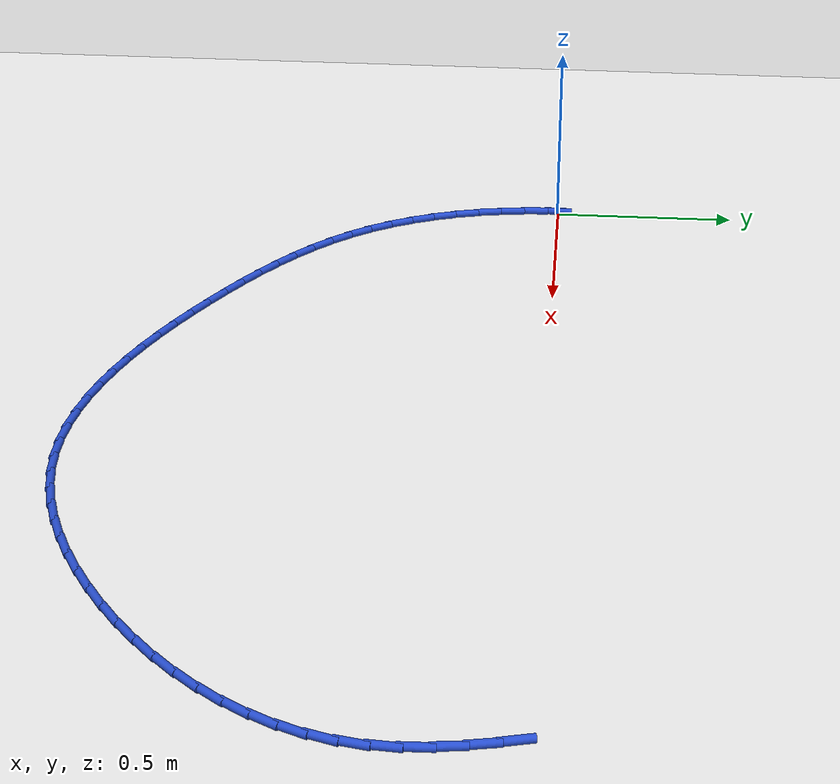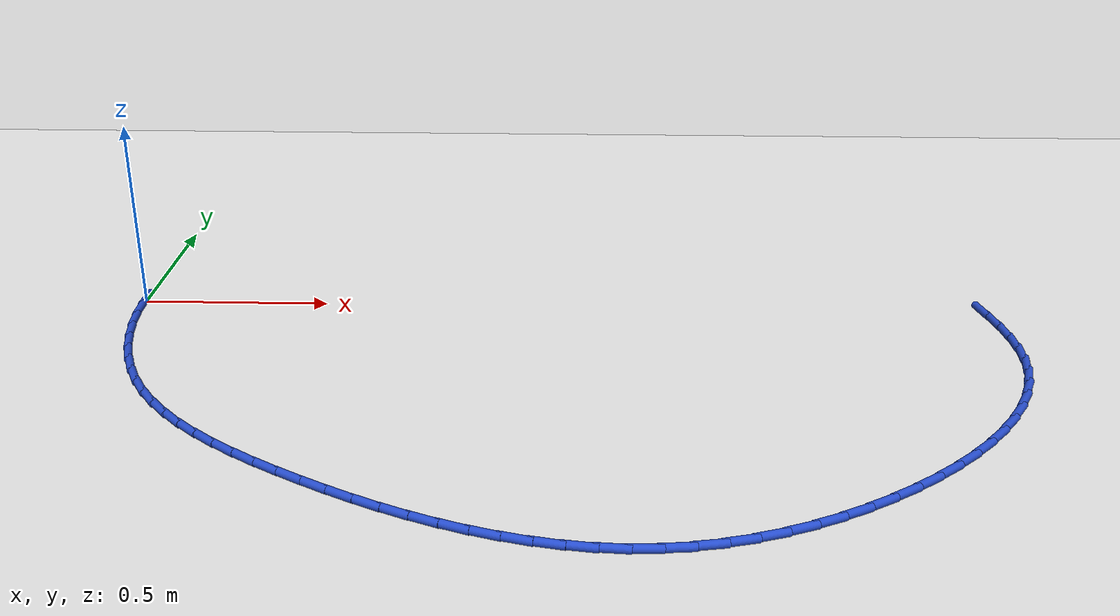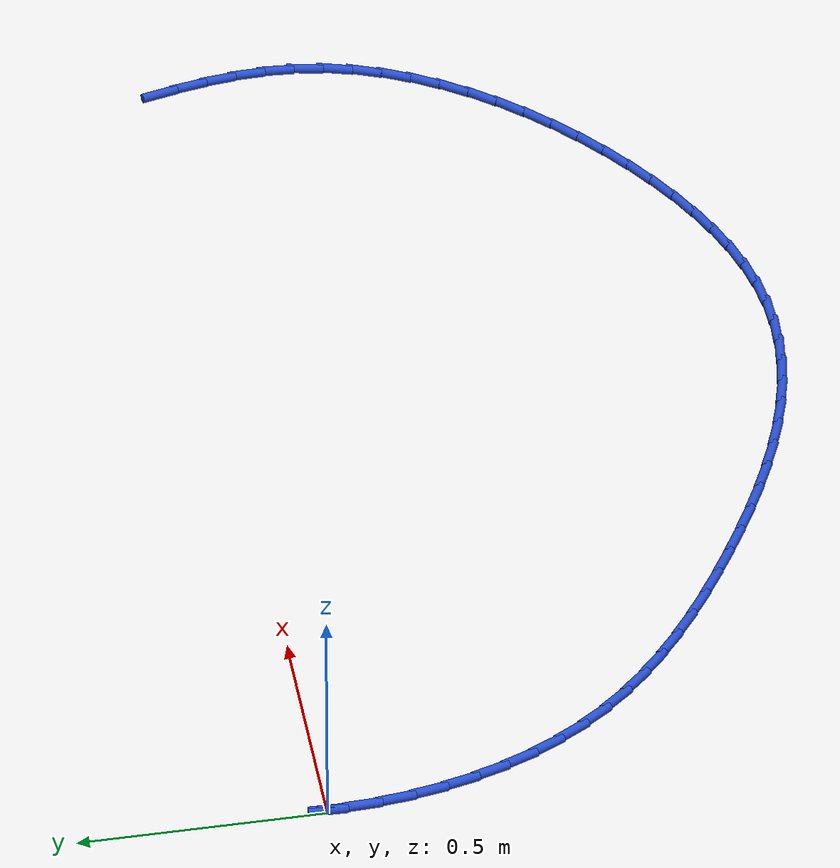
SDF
<sdf version="1.6">
 <world name="default">
  <model name="ground_plane">
   <static>1</static>
   <link name="link">
    <collision name="collision">
     <geometry><plane><normal>0 0 1</normal><size>100 100</size></plane></geometry>
     <surface><friction><ode><mu>100</mu><mu2>50</mu2></ode></friction></surface>
    </collision>
    <visual name="visual">
     <cast_shadows>0</cast_shadows>
     <geometry><plane><normal>0 0 1</normal><size>100 100</size></plane></geometry>
     <material>
      <script><uri>file://media/materials/scripts/gazebo.material</uri><name>Gazebo/WhiteGlow</name></script>
     </material>
    </visual>
   </link>
  </model>
  <model name="line">
   <link name="link_0">
    <pose>6.938893903907228e-17 6.938893903907228e-17 0.01 0 1.57 1.5469250835728008</pose>
    <collision name="collision">
     <geometry><cylinder><radius>0.01</radius><length>0.08</length></cylinder></geometry>
    </collision>
    <visual name="visual">
     <material>
      <script><name>Gazebo/Blue</name><uri>file://media/materials/scripts/gazebo.material</uri></script>
     </material>
     <geometry><cylinder><radius>0.01</radius><length>0.08</length></cylinder></geometry>
    </visual>
   </link>
   <link name="link_56">
    <pose>2.28206139808096 -0.015136964080858 0.01 0 1.57 -1.3373496389094075</pose>
    <collision name="collision">
     <geometry><cylinder><radius>0.01</radius><length>0.08</length></cylinder></geometry>
    </collision>
    <visual name="visual">
     <material>
      <script><name>Gazebo/Blue</name><uri>file://media/materials/scripts/gazebo.material</uri></script>
     </material>
     <geometry><cylinder><radius>0.01</radius><length>0.08</length></cylinder></geometry>
    </visual>
   </link>
   <link name="link_57">
    <pose>2.297586856186067 -0.08042979855683184 0.01 0 1.57 -1.3892265195322144</pose>
    <collision name="collision">
     <geometry><cylinder><radius>0.01</radius><length>0.08</length></cylinder></geometry>
    </collision>
    <visual name="visual">
     <material>
      <script><name>Gazebo/Blue</name><uri>file://media/materials/scripts/gazebo.material</uri></script>
     </material>
     <geometry><cylinder><radius>0.01</radius><length>0.08</length></cylinder></geometry>
    </visual>
   </link>
   <link name="link_58">
    <pose>2.309505282894215 -0.145347882486848 0.01 0 1.57 -1.4564763526986253</pose>
    <collision name="collision">
     <geometry><cylinder><radius>0.01</radius><length>0.08</length></cylinder></geometry>
    </collision>
    <visual name="visual">
     <material>
      <script><name>Gazebo/Blue</name><uri>file://media/materials/scripts/gazebo.material</uri></script>
     </material>
     <geometry><cylinder><radius>0.01</radius><length>0.08</length></cylinder></geometry>
    </visual>
   </link>
   <link name="link_59">
    <pose>2.316906821380067 -0.20980964175457467 0.01 0 1.57 -1.539913248803407</pose>
    <collision name="collision">
     <geometry><cylinder><radius>0.01</radius><length>0.08</length></cylinder></geometry>
    </collision>
    <visual name="visual">
     <material>
      <script><name>Gazebo/Blue</name><uri>file://media/materials/scripts/gazebo.material</uri></script>
     </material>
     <geometry><cylinder><radius>0.01</radius><length>0.08</length></cylinder></geometry>
    </visual>
   </link>
   <link name="link_60">
    <pose>2.318881614818289 -0.2737335022436773 0.01 0 1.57 1.5020029046519452</pose>
    <collision name="collision">
     <geometry><cylinder><radius>0.01</radius><length>0.08</length></cylinder></geometry>
    </collision>
    <visual name="visual">
     <material>
      <script><name>Gazebo/Blue</name><uri>file://media/materials/scripts/gazebo.material</uri></script>
     </material>
     <geometry><cylinder><radius>0.01</radius><length>0.08</length></cylinder></geometry>
    </visual>
   </link>
   <link name="link_61">
    <pose>2.3145198063835433 -0.3370378898378241 0.01 0 1.57 1.3908723173161703</pose>
    <collision name="collision">
     <geometry><cylinder><radius>0.01</radius><length>0.08</length></cylinder></geometry>
    </collision>
    <visual name="visual">
     <material>
      <script><name>Gazebo/Blue</name><uri>file://media/materials/scripts/gazebo.material</uri></script>
     </material>
     <geometry><cylinder><radius>0.01</radius><length>0.08</length></cylinder></geometry>
    </visual>
   </link>
   <link name="link_62">
    <pose>2.3031366552292356 -0.399620148959054 0.01 0 1.57 1.284663015837504</pose>
    <collision name="collision">
     <geometry><cylinder><radius>0.01</radius><length>0.08</length></cylinder></geometry>
    </collision>
    <visual name="visual">
     <material>
      <script><name>Gazebo/Blue</name><uri>file://media/materials/scripts/gazebo.material</uri></script>
     </material>
     <geometry><cylinder><radius>0.01</radius><length>0.08</length></cylinder></geometry>
    </visual>
   </link>
   <link name="link_63">
    <pose>2.284993257758473 -0.4612890491010736 0.01 0 1.57 1.1877613418608333</pose>
    <collision name="collision">
     <geometry><cylinder><radius>0.01</radius><length>0.08</length></cylinder></geometry>
    </collision>
    <visual name="visual">
     <material>
      <script><name>Gazebo/Blue</name><uri>file://media/materials/scripts/gazebo.material</uri></script>
     </material>
     <geometry><cylinder><radius>0.01</radius><length>0.08</length></cylinder></geometry>
    </visual>
   </link>
   <link name="link_64">
    <pose>2.2605990788104062 -0.5218301007704509 0.01 0 1.57 1.099929733300832</pose>
    <collision name="collision">
     <geometry><cylinder><radius>0.01</radius><length>0.08</length></cylinder></geometry>
    </collision>
    <visual name="visual">
     <material>
      <script><name>Gazebo/Blue</name><uri>file://media/materials/scripts/gazebo.material</uri></script>
     </material>
     <geometry><cylinder><radius>0.01</radius><length>0.08</length></cylinder></geometry>
    </visual>
   </link>
   <link name="link_65">
    <pose>2.230463584264604 -0.5810288143763234 0.01 0 1.57 1.0204584356422075</pose>
    <collision name="collision">
     <geometry><cylinder><radius>0.01</radius><length>0.08</length></cylinder></geometry>
    </collision>
    <visual name="visual">
     <material>
      <script><name>Gazebo/Blue</name><uri>file://media/materials/scripts/gazebo.material</uri></script>
     </material>
     <geometry><cylinder><radius>0.01</radius><length>0.08</length></cylinder></geometry>
    </visual>
   </link>
   <link name="link_66">
    <pose>2.195096240000639 -0.638670700327829 0.01 0 1.57 0.9483910346796052</pose>
    <collision name="collision">
     <geometry><cylinder><radius>0.01</radius><length>0.08</length></cylinder></geometry>
    </collision>
    <visual name="visual">
     <material>
      <script><name>Gazebo/Blue</name><uri>file://media/materials/scripts/gazebo.material</uri></script>
     </material>
     <geometry><cylinder><radius>0.01</radius><length>0.08</length></cylinder></geometry>
    </visual>
   </link>
   <link name="link_67">
    <pose>2.155006511898081 -0.6945412690341032 0.01 0 1.57 0.8826801795806837</pose>
    <collision name="collision">
     <geometry><cylinder><radius>0.01</radius><length>0.08</length></cylinder></geometry>
    </collision>
    <visual name="visual">
     <material>
      <script><name>Gazebo/Blue</name><uri>file://media/materials/scripts/gazebo.material</uri></script>
     </material>
     <geometry><cylinder><radius>0.01</radius><length>0.08</length></cylinder></geometry>
    </visual>
   </link>
   <link name="link_68">
    <pose>2.1107038658365007 -0.7484260309042842 0.01 0 1.57 0.8222792805905352</pose>
    <collision name="collision">
     <geometry><cylinder><radius>0.01</radius><length>0.08</length></cylinder></geometry>
    </collision>
    <visual name="visual">
     <material>
      <script><name>Gazebo/Blue</name><uri>file://media/materials/scripts/gazebo.material</uri></script>
     </material>
     <geometry><cylinder><radius>0.01</radius><length>0.08</length></cylinder></geometry>
    </visual>
   </link>
   <link name="link_69">
    <pose>2.06269776769547 -0.800110496347508 0.01 0 1.57 0.7661867375241921</pose>
    <collision name="collision">
     <geometry><cylinder><radius>0.01</radius><length>0.08</length></cylinder></geometry>
    </collision>
    <visual name="visual">
     <material>
      <script><name>Gazebo/Blue</name><uri>file://media/materials/scripts/gazebo.material</uri></script>
     </material>
     <geometry><cylinder><radius>0.01</radius><length>0.08</length></cylinder></geometry>
    </visual>
   </link>
   <link name="link_70">
    <pose>2.0114976833545577 -0.8493801757729122 0.01 0 1.57 0.713458854405114</pose>
    <collision name="collision">
     <geometry><cylinder><radius>0.01</radius><length>0.08</length></cylinder></geometry>
    </collision>
    <visual name="visual">
     <material>
      <script><name>Gazebo/Blue</name><uri>file://media/materials/scripts/gazebo.material</uri></script>
     </material>
     <geometry><cylinder><radius>0.01</radius><length>0.08</length></cylinder></geometry>
    </visual>
   </link>
   <link name="link_71">
    <pose>1.957613078693337 -0.8960205795896329 0.01 0 1.57 0.6632033243982431</pose>
    <collision name="collision">
     <geometry><cylinder><radius>0.01</radius><length>0.08</length></cylinder></geometry>
    </collision>
    <visual name="visual">
     <material>
      <script><name>Gazebo/Blue</name><uri>file://media/materials/scripts/gazebo.material</uri></script>
     </material>
     <geometry><cylinder><radius>0.01</radius><length>0.08</length></cylinder></geometry>
    </visual>
   </link>
   <link name="link_72">
    <pose>1.9015534195913764 -0.9398172182068082 0.01 0 1.57 0.6145374097117852</pose>
    <collision name="collision">
     <geometry><cylinder><radius>0.01</radius><length>0.08</length></cylinder></geometry>
    </collision>
    <visual name="visual">
     <material>
      <script><name>Gazebo/Blue</name><uri>file://media/materials/scripts/gazebo.material</uri></script>
     </material>
     <geometry><cylinder><radius>0.01</radius><length>0.08</length></cylinder></geometry>
    </visual>
   </link>
   <link name="link_73">
    <pose>1.8438260331368244 -0.9805551042514974 0.01 0 1.57 0.565159736215827</pose>
    <collision name="collision">
     <geometry><cylinder><radius>0.01</radius><length>0.08</length></cylinder></geometry>
    </collision>
    <visual name="visual">
     <material>
      <script><name>Gazebo/Blue</name><uri>file://media/materials/scripts/gazebo.material</uri></script>
     </material>
     <geometry><cylinder><radius>0.01</radius><length>0.08</length></cylinder></geometry>
    </visual>
   </link>
   <link name="link_74">
    <pose>1.7848000282276402 -1.0179870814646779 0.01 0 1.57 0.5121228186807635</pose>
    <collision name="collision">
     <geometry><cylinder><radius>0.01</radius><length>0.08</length></cylinder></geometry>
    </collision>
    <visual name="visual">
     <material>
      <script><name>Gazebo/Blue</name><uri>file://media/materials/scripts/gazebo.material</uri></script>
     </material>
     <geometry><cylinder><radius>0.01</radius><length>0.08</length></cylinder></geometry>
    </visual>
   </link>
   <link name="link_75">
    <pose>1.7246243861680826 -1.0518147611158473 0.01 0 1.57 0.45475102496214864</pose>
    <collision name="collision">
     <geometry><cylinder><radius>0.01</radius><length>0.08</length></cylinder></geometry>
    </collision>
    <visual name="visual">
     <material>
      <script><name>Gazebo/Blue</name><uri>file://media/materials/scripts/gazebo.material</uri></script>
     </material>
     <geometry><cylinder><radius>0.01</radius><length>0.08</length></cylinder></geometry>
    </visual>
   </link>
   <link name="link_76">
    <pose>1.663428447088906 -1.0817351831899897 0.01 0 1.57 0.3926024330827016</pose>
    <collision name="collision">
     <geometry><cylinder><radius>0.01</radius><length>0.08</length></cylinder></geometry>
    </collision>
    <visual name="visual">
     <material>
      <script><name>Gazebo/Blue</name><uri>file://media/materials/scripts/gazebo.material</uri></script>
     </material>
     <geometry><cylinder><radius>0.01</radius><length>0.08</length></cylinder></geometry>
    </visual>
   </link>
   <link name="link_77">
    <pose>1.6013415511208668 -1.1074453876720851 0.01 0 1.57 0.3252909172994491</pose>
    <collision name="collision">
     <geometry><cylinder><radius>0.01</radius><length>0.08</length></cylinder></geometry>
    </collision>
    <visual name="visual">
     <material>
      <script><name>Gazebo/Blue</name><uri>file://media/materials/scripts/gazebo.material</uri></script>
     </material>
     <geometry><cylinder><radius>0.01</radius><length>0.08</length></cylinder></geometry>
    </visual>
   </link>
   <link name="link_78">
    <pose>1.53849303839472 -1.1286424145471168 0.01 0 1.57 0.25253581513947626</pose>
    <collision name="collision">
     <geometry><cylinder><radius>0.01</radius><length>0.08</length></cylinder></geometry>
    </collision>
    <visual name="visual">
     <material>
      <script><name>Gazebo/Blue</name><uri>file://media/materials/scripts/gazebo.material</uri></script>
     </material>
     <geometry><cylinder><radius>0.01</radius><length>0.08</length></cylinder></geometry>
    </visual>
   </link>
   <link name="link_79">
    <pose>1.4750122490412214 -1.1450233038000648 0.01 0 1.57 0.1742257289619194</pose>
    <collision name="collision">
     <geometry><cylinder><radius>0.01</radius><length>0.08</length></cylinder></geometry>
    </collision>
    <visual name="visual">
     <material>
      <script><name>Gazebo/Blue</name><uri>file://media/materials/scripts/gazebo.material</uri></script>
     </material>
     <geometry><cylinder><radius>0.01</radius><length>0.08</length></cylinder></geometry>
    </visual>
   </link>
   <link name="link_80">
    <pose>1.4110285231911253 -1.1562850954159116 0.01 0 1.57 0.0905802301327813</pose>
    <collision name="collision">
     <geometry><cylinder><radius>0.01</radius><length>0.08</length></cylinder></geometry>
    </collision>
    <visual name="visual">
     <material>
      <script><name>Gazebo/Blue</name><uri>file://media/materials/scripts/gazebo.material</uri></script>
     </material>
     <geometry><cylinder><radius>0.01</radius><length>0.08</length></cylinder></geometry>
    </visual>
   </link>
   <link name="link_81">
    <pose>1.346671060911835 -1.1621306049476212 0.01 0 1.57 0.0061666996878951075</pose>
    <collision name="collision">
     <geometry><cylinder><radius>0.01</radius><length>0.08</length></cylinder></geometry>
    </collision>
    <visual name="visual">
     <material>
      <script><name>Gazebo/Blue</name><uri>file://media/materials/scripts/gazebo.material</uri></script>
     </material>
     <geometry><cylinder><radius>0.01</radius><length>0.08</length></cylinder></geometry>
    </visual>
   </link>
   <link name="link_82">
    <pose>1.2820626022138468 -1.162529030960195 0.01 0 1.57 -0.0725727618707559</pose>
    <collision name="collision">
     <geometry><cylinder><radius>0.01</radius><length>0.08</length></cylinder></geometry>
    </collision>
    <visual name="visual">
     <material>
      <script><name>Gazebo/Blue</name><uri>file://media/materials/scripts/gazebo.material</uri></script>
     </material>
     <geometry><cylinder><radius>0.01</radius><length>0.08</length></cylinder></geometry>
    </visual>
   </link>
   <link name="link_83">
    <pose>1.21731685567537 -1.1578219867155835 0.01 0 1.57 -0.14477538994211986</pose>
    <collision name="collision">
     <geometry><cylinder><radius>0.01</radius><length>0.08</length></cylinder></geometry>
    </collision>
    <visual name="visual">
     <material>
      <script><name>Gazebo/Blue</name><uri>file://media/materials/scripts/gazebo.material</uri></script>
     </material>
     <geometry><cylinder><radius>0.01</radius><length>0.08</length></cylinder></geometry>
    </visual>
   </link>
   <link name="link_84">
    <pose>1.1525468573676025 -1.1483788165696016 0.01 0 1.57 -0.21034957096187828</pose>
    <collision name="collision">
     <geometry><cylinder><radius>0.01</radius><length>0.08</length></cylinder></geometry>
    </collision>
    <visual name="visual">
     <material>
      <script><name>Gazebo/Blue</name><uri>file://media/materials/scripts/gazebo.material</uri></script>
     </material>
     <geometry><cylinder><radius>0.01</radius><length>0.08</length></cylinder></geometry>
    </visual>
   </link>
   <link name="link_85">
    <pose>1.087865643361738 -1.1345688648780632 0.01 0 1.57 -0.2694552782911678</pose>
    <collision name="collision">
     <geometry><cylinder><radius>0.01</radius><length>0.08</length></cylinder></geometry>
    </collision>
    <visual name="visual">
     <material>
      <script><name>Gazebo/Blue</name><uri>file://media/materials/scripts/gazebo.material</uri></script>
     </material>
     <geometry><cylinder><radius>0.01</radius><length>0.08</length></cylinder></geometry>
    </visual>
   </link>
   <link name="link_86">
    <pose>1.0233862497289732 -1.1167614759967817 0.01 0 1.57 -0.32241389538579657</pose>
    <collision name="collision">
     <geometry><cylinder><radius>0.01</radius><length>0.08</length></cylinder></geometry>
    </collision>
    <visual name="visual">
     <material>
      <script><name>Gazebo/Blue</name><uri>file://media/materials/scripts/gazebo.material</uri></script>
     </material>
     <geometry><cylinder><radius>0.01</radius><length>0.08</length></cylinder></geometry>
    </visual>
   </link>
   <link name="link_87">
    <pose>0.9592217125405023 -1.0953259942815714 0.01 0 1.57 -0.36963354759047967</pose>
    <collision name="collision">
     <geometry><cylinder><radius>0.01</radius><length>0.08</length></cylinder></geometry>
    </collision>
    <visual name="visual">
     <material>
      <script><name>Gazebo/Blue</name><uri>file://media/materials/scripts/gazebo.material</uri></script>
     </material>
     <geometry><cylinder><radius>0.01</radius><length>0.08</length></cylinder></geometry>
    </visual>
   </link>
   <link name="link_88">
    <pose>0.8954850678675224 -1.0706317640882463 0.01 0 1.57 -0.4115535666410771</pose>
    <collision name="collision">
     <geometry><cylinder><radius>0.01</radius><length>0.08</length></cylinder></geometry>
    </collision>
    <visual name="visual">
     <material>
      <script><name>Gazebo/Blue</name><uri>file://media/materials/scripts/gazebo.material</uri></script>
     </material>
     <geometry><cylinder><radius>0.01</radius><length>0.08</length></cylinder></geometry>
    </visual>
   </link>
   <link name="link_89">
    <pose>0.8322893517812273 -1.0430481297726206 0.01 0 1.57 -0.44860650207040353</pose>
    <collision name="collision">
     <geometry><cylinder><radius>0.01</radius><length>0.08</length></cylinder></geometry>
    </collision>
    <visual name="visual">
     <material>
      <script><name>Gazebo/Blue</name><uri>file://media/materials/scripts/gazebo.material</uri></script>
     </material>
     <geometry><cylinder><radius>0.01</radius><length>0.08</length></cylinder></geometry>
    </visual>
   </link>
   <link name="link_90">
    <pose>0.7697476003528141 -1.012944435690508 0.01 0 1.57 -0.48119394453299447</pose>
    <collision name="collision">
     <geometry><cylinder><radius>0.01</radius><length>0.08</length></cylinder></geometry>
    </collision>
    <visual name="visual">
     <material>
      <script><name>Gazebo/Blue</name><uri>file://media/materials/scripts/gazebo.material</uri></script>
     </material>
     <geometry><cylinder><radius>0.01</radius><length>0.08</length></cylinder></geometry>
    </visual>
   </link>
   <link name="link_91">
    <pose>0.7079728496534767 -0.9806900261977219 0.01 0 1.57 -0.5096721199960751</pose>
    <collision name="collision">
     <geometry><cylinder><radius>0.01</radius><length>0.08</length></cylinder></geometry>
    </collision>
    <visual name="visual">
     <material>
      <script><name>Gazebo/Blue</name><uri>file://media/materials/scripts/gazebo.material</uri></script>
     </material>
     <geometry><cylinder><radius>0.01</radius><length>0.08</length></cylinder></geometry>
    </visual>
   </link>
   <link name="link_92">
    <pose>0.6470781357544125 -0.9466542456500776 0.01 0 1.57 -0.5343437416845471</pose>
    <collision name="collision">
     <geometry><cylinder><radius>0.01</radius><length>0.08</length></cylinder></geometry>
    </collision>
    <visual name="visual">
     <material>
      <script><name>Gazebo/Blue</name><uri>file://media/materials/scripts/gazebo.material</uri></script>
     </material>
     <geometry><cylinder><radius>0.01</radius><length>0.08</length></cylinder></geometry>
    </visual>
   </link>
   <link name="link_93">
    <pose>0.5871764947268151 -0.911206438403388 0.01 0 1.57 -0.5568572108665525</pose>
    <collision name="collision">
     <geometry><cylinder><radius>0.01</radius><length>0.08</length></cylinder></geometry>
    </collision>
    <visual name="visual">
     <material>
      <script><name>Gazebo/Blue</name><uri>file://media/materials/scripts/gazebo.material</uri></script>
     </material>
     <geometry><cylinder><radius>0.01</radius><length>0.08</length></cylinder></geometry>
    </visual>
   </link>
   <link name="link_94">
    <pose>0.5284177997207848 -0.874624448983819 0.01 0 1.57 -0.5838472209373021</pose>
    <collision name="collision">
     <geometry><cylinder><radius>0.01</radius><length>0.08</length></cylinder></geometry>
    </collision>
    <visual name="visual">
     <material>
      <script><name>Gazebo/Blue</name><uri>file://media/materials/scripts/gazebo.material</uri></script>
     </material>
     <geometry><cylinder><radius>0.01</radius><length>0.08</length></cylinder></geometry>
    </visual>
   </link>
   <link name="link_95">
    <pose>0.47111992209950093 -0.8367688302012543 0.01 0 1.57 -0.6174412419943127</pose>
    <collision name="collision">
     <geometry><cylinder><radius>0.01</radius><length>0.08</length></cylinder></geometry>
    </collision>
    <visual name="visual">
     <material>
      <script><name>Gazebo/Blue</name><uri>file://media/materials/scripts/gazebo.material</uri></script>
     </material>
     <geometry><cylinder><radius>0.01</radius><length>0.08</length></cylinder></geometry>
    </visual>
   </link>
   <link name="link_96">
    <pose>0.4156485988428841 -0.7973812411881217 0.01 0 1.57 -0.6579796823153233</pose>
    <collision name="collision">
     <geometry><cylinder><radius>0.01</radius><length>0.08</length></cylinder></geometry>
    </collision>
    <visual name="visual">
     <material>
      <script><name>Gazebo/Blue</name><uri>file://media/materials/scripts/gazebo.material</uri></script>
     </material>
     <geometry><cylinder><radius>0.01</radius><length>0.08</length></cylinder></geometry>
    </visual>
   </link>
   <link name="link_97">
    <pose>0.36236957043841506 -0.7562033323643932 0.01 0 1.57 -0.7057944230797981</pose>
    <collision name="collision">
     <geometry><cylinder><radius>0.01</radius><length>0.08</length></cylinder></geometry>
    </collision>
    <visual name="visual">
     <material>
      <script><name>Gazebo/Blue</name><uri>file://media/materials/scripts/gazebo.material</uri></script>
     </material>
     <geometry><cylinder><radius>0.01</radius><length>0.08</length></cylinder></geometry>
    </visual>
   </link>
   <link name="link_98">
    <pose>0.31164857737357476 -0.7129767541500411 0.01 0 1.57 -0.7611491908556189</pose>
    <collision name="collision">
     <geometry><cylinder><radius>0.01</radius><length>0.08</length></cylinder></geometry>
    </collision>
    <visual name="visual">
     <material>
      <script><name>Gazebo/Blue</name><uri>file://media/materials/scripts/gazebo.material</uri></script>
     </material>
     <geometry><cylinder><radius>0.01</radius><length>0.08</length></cylinder></geometry>
    </visual>
   </link>
   <link name="link_99">
    <pose>0.26385136013584604 -0.6674431569650392 0.01 0 1.57 -0.824158506462773</pose>
    <collision name="collision">
     <geometry><cylinder><radius>0.01</radius><length>0.08</length></cylinder></geometry>
    </collision>
    <visual name="visual">
     <material>
      <script><name>Gazebo/Blue</name><uri>file://media/materials/scripts/gazebo.material</uri></script>
     </material>
     <geometry><cylinder><radius>0.01</radius><length>0.08</length></cylinder></geometry>
    </visual>
   </link>
   <link name="link_100">
    <pose>0.2193436592127095 -0.6193441912293595 0.01 0 1.57 -0.8946882719578373</pose>
    <collision name="collision">
     <geometry><cylinder><radius>0.01</radius><length>0.08</length></cylinder></geometry>
    </collision>
    <visual name="visual">
     <material>
      <script><name>Gazebo/Blue</name><uri>file://media/materials/scripts/gazebo.material</uri></script>
     </material>
     <geometry><cylinder><radius>0.01</radius><length>0.08</length></cylinder></geometry>
    </visual>
   </link>
   <link name="link_101">
    <pose>0.17849121509164748 -0.5684215073629753 0.01 0 1.57 -0.9720777390492576</pose>
    <collision name="collision">
     <geometry><cylinder><radius>0.01</radius><length>0.08</length></cylinder></geometry>
    </collision>
    <visual name="visual">
     <material>
      <script><name>Gazebo/Blue</name><uri>file://media/materials/scripts/gazebo.material</uri></script>
     </material>
     <geometry><cylinder><radius>0.01</radius><length>0.08</length></cylinder></geometry>
    </visual>
   </link>
   <link name="link_102">
    <pose>0.14165337203807854 -0.5144274441522534 0.01 0 1.57 -1.0512152169443634</pose>
    <collision name="collision">
     <geometry><cylinder><radius>0.01</radius><length>0.08</length></cylinder></geometry>
    </collision>
    <visual name="visual">
     <material>
      <script><name>Gazebo/Blue</name><uri>file://media/materials/scripts/gazebo.material</uri></script>
     </material>
     <geometry><cylinder><radius>0.01</radius><length>0.08</length></cylinder></geometry>
    </visual>
   </link>
   <link name="link_103">
    <pose>0.10902610404971366 -0.457387339235454 0.01 0 1.57 -1.1273198931160968</pose>
    <collision name="collision">
     <geometry><cylinder><radius>0.01</radius><length>0.08</length></cylinder></geometry>
    </collision>
    <visual name="visual">
     <material>
      <script><name>Gazebo/Blue</name><uri>file://media/materials/scripts/gazebo.material</uri></script>
     </material>
     <geometry><cylinder><radius>0.01</radius><length>0.08</length></cylinder></geometry>
    </visual>
   </link>
   <link name="link_104">
    <pose>0.08063243769581731 -0.39761553295655805 0.01 0 1.57 -1.2003790372015224</pose>
    <collision name="collision">
     <geometry><cylinder><radius>0.01</radius><length>0.08</length></cylinder></geometry>
    </collision>
    <visual name="visual">
     <material>
      <script><name>Gazebo/Blue</name><uri>file://media/materials/scripts/gazebo.material</uri></script>
     </material>
     <geometry><cylinder><radius>0.01</radius><length>0.08</length></cylinder></geometry>
    </visual>
   </link>
   <link name="link_105">
    <pose>0.056487085942527944 -0.3354402580534386 0.01 0 1.57 -1.2706924623525968</pose>
    <collision name="collision">
     <geometry><cylinder><radius>0.01</radius><length>0.08</length></cylinder></geometry>
    </collision>
    <visual name="visual">
     <material>
      <script><name>Gazebo/Blue</name><uri>file://media/materials/scripts/gazebo.material</uri></script>
     </material>
     <geometry><cylinder><radius>0.01</radius><length>0.08</length></cylinder></geometry>
    </visual>
   </link>
   <link name="link_106">
    <pose>0.03660476175598269 -0.2711897472639665 0.01 0 1.57 -1.3386182804431708</pose>
    <collision name="collision">
     <geometry><cylinder><radius>0.01</radius><length>0.08</length></cylinder></geometry>
    </collision>
    <visual name="visual">
     <material>
      <script><name>Gazebo/Blue</name><uri>file://media/materials/scripts/gazebo.material</uri></script>
     </material>
     <geometry><cylinder><radius>0.01</radius><length>0.08</length></cylinder></geometry>
    </visual>
   </link>
   <link name="link_107">
    <pose>0.021000178102319723 -0.2051922333260151 0.01 0 1.57 -1.404549800421187</pose>
    <collision name="collision">
     <geometry><cylinder><radius>0.01</radius><length>0.08</length></cylinder></geometry>
    </collision>
    <visual name="visual">
     <material>
      <script><name>Gazebo/Blue</name><uri>file://media/materials/scripts/gazebo.material</uri></script>
     </material>
     <geometry><cylinder><radius>0.01</radius><length>0.08</length></cylinder></geometry>
    </visual>
   </link>
   <link name="link_108">
    <pose>0.009688047947676394 -0.13777594897745513 0.01 0 1.57 -1.4688984124948414</pose>
    <collision name="collision">
     <geometry><cylinder><radius>0.01</radius><length>0.08</length></cylinder></geometry>
    </collision>
    <visual name="visual">
     <material>
      <script><name>Gazebo/Blue</name><uri>file://media/materials/scripts/gazebo.material</uri></script>
     </material>
     <geometry><cylinder><radius>0.01</radius><length>0.08</length></cylinder></geometry>
    </visual>
   </link>
   <link name="link_109">
    <pose>0.0026830842581906655 -0.06926912695615993 0.01 0 1.57 -1.5320814802538099</pose>
    <collision name="collision">
     <geometry><cylinder><radius>0.01</radius><length>0.08</length></cylinder></geometry>
    </collision>
    <visual name="visual">
     <material>
      <script><name>Gazebo/Blue</name><uri>file://media/materials/scripts/gazebo.material</uri></script>
     </material>
     <geometry><cylinder><radius>0.01</radius><length>0.08</length></cylinder></geometry>
    </visual>
   </link>
   <link name="link_110">
    <pose>8.673617379884035e-17 -8.326672684688674e-17 0.01 0 1.57 1.5470786481325707</pose>
    <collision name="collision">
     <geometry><cylinder><radius>0.01</radius><length>0.08</length></cylinder></geometry>
    </collision>
    <visual name="visual">
     <material>
      <script><name>Gazebo/Blue</name><uri>file://media/materials/scripts/gazebo.material</uri></script>
     </material>
     <geometry><cylinder><radius>0.01</radius><length>0.08</length></cylinder></geometry>
    </visual>
   </link>
  </model>
 </world>
</sdf>
